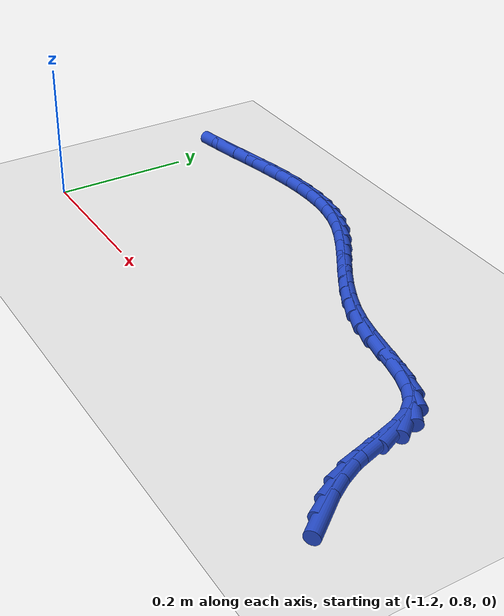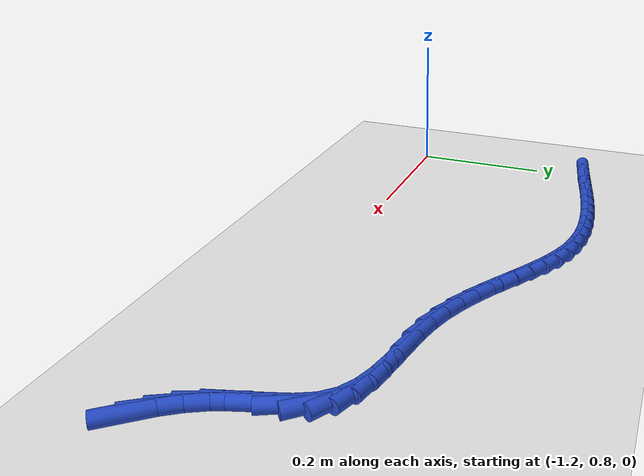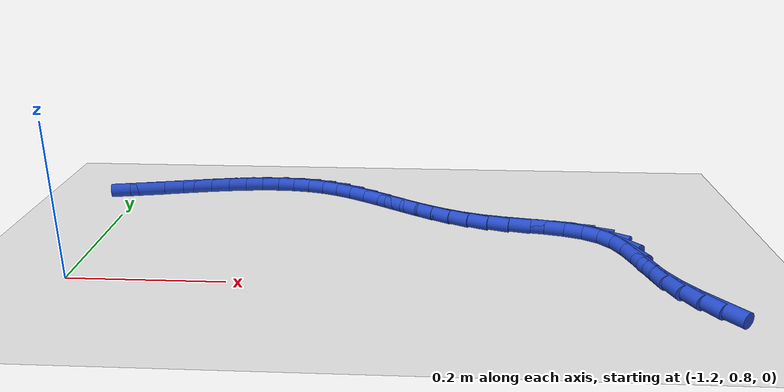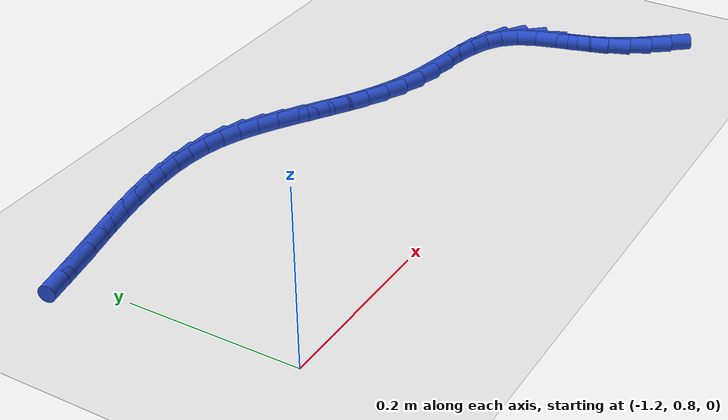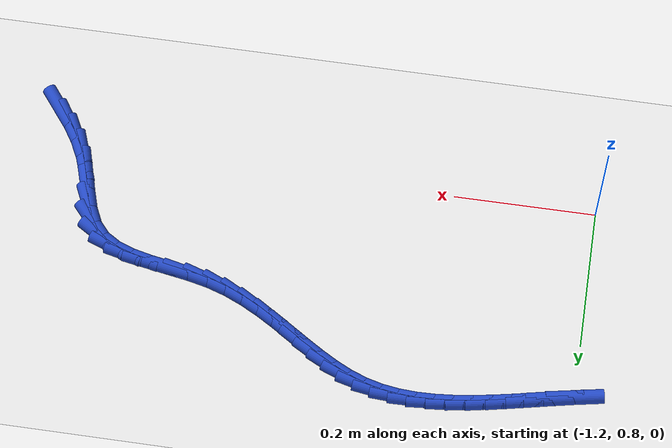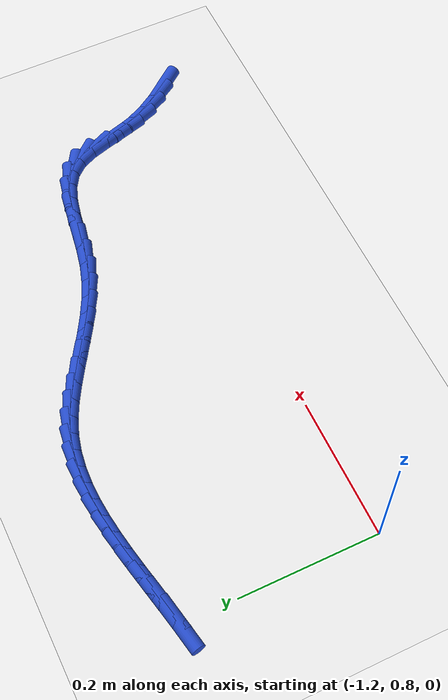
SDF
<sdf version="1.6">
 <world name="default">
  <model name="ground_plane">
   <static>1</static>
   <link name="link">
    <collision name="collision">
     <geometry><plane><normal>0 0 1</normal><size>100 100</size></plane></geometry>
     <surface><friction><ode><mu>100</mu><mu2>50</mu2></ode></friction></surface>
    </collision>
    <visual name="visual">
     <cast_shadows>0</cast_shadows>
     <geometry><plane><normal>0 0 1</normal><size>100 100</size></plane></geometry>
     <material>
      <script><uri>file://media/materials/scripts/gazebo.material</uri><name>Gazebo/WhiteGlow</name></script>
     </material>
    </visual>
   </link>
  </model>
  <model name="line">
   <link name="link_34">
    <pose>-0.4296642426156293 0.7523661136383257 0.01 0 1.57 -0.9057463648109343</pose>
    <collision name="collision">
     <geometry><cylinder><radius>0.01</radius><length>0.08</length></cylinder></geometry>
    </collision>
    <visual name="visual">
     <material>
      <script><name>Gazebo/Blue</name><uri>file://media/materials/scripts/gazebo.material</uri></script>
     </material>
     <geometry><cylinder><radius>0.01</radius><length>0.08</length></cylinder></geometry>
    </visual>
   </link>
   <link name="link_35">
    <pose>-0.4457051217196115 0.7728204552599179 0.01 0 1.57 -1.0030791591129404</pose>
    <collision name="collision">
     <geometry><cylinder><radius>0.01</radius><length>0.08</length></cylinder></geometry>
    </collision>
    <visual name="visual">
     <material>
      <script><name>Gazebo/Blue</name><uri>file://media/materials/scripts/gazebo.material</uri></script>
     </material>
     <geometry><cylinder><radius>0.01</radius><length>0.08</length></cylinder></geometry>
    </visual>
   </link>
   <link name="link_36">
    <pose>-0.4597346027352581 0.7948187698947893 0.01 0 1.57 -1.1121397618428095</pose>
    <collision name="collision">
     <geometry><cylinder><radius>0.01</radius><length>0.08</length></cylinder></geometry>
    </collision>
    <visual name="visual">
     <material>
      <script><name>Gazebo/Blue</name><uri>file://media/materials/scripts/gazebo.material</uri></script>
     </material>
     <geometry><cylinder><radius>0.01</radius><length>0.08</length></cylinder></geometry>
    </visual>
   </link>
   <link name="link_37">
    <pose>-0.47147140409225285 0.8185882227301708 0.01 0 1.57 -1.2277286352811019</pose>
    <collision name="collision">
     <geometry><cylinder><radius>0.01</radius><length>0.08</length></cylinder></geometry>
    </collision>
    <visual name="visual">
     <material>
      <script><name>Gazebo/Blue</name><uri>file://media/materials/scripts/gazebo.material</uri></script>
     </material>
     <geometry><cylinder><radius>0.01</radius><length>0.08</length></cylinder></geometry>
    </visual>
   </link>
   <link name="link_38">
    <pose>-0.48066493686973966 0.8443265592550228 0.01 0 1.57 -1.2996597589890848</pose>
    <collision name="collision">
     <geometry><cylinder><radius>0.01</radius><length>0.08</length></cylinder></geometry>
    </collision>
    <visual name="visual">
     <material>
      <script><name>Gazebo/Blue</name><uri>file://media/materials/scripts/gazebo.material</uri></script>
     </material>
     <geometry><cylinder><radius>0.01</radius><length>0.08</length></cylinder></geometry>
    </visual>
   </link>
   <link name="link_39">
    <pose>-0.48813642993797896 0.8712041598865475 0.01 0 1.57 -1.27503638557698</pose>
    <collision name="collision">
     <geometry><cylinder><radius>0.01</radius><length>0.08</length></cylinder></geometry>
    </collision>
    <visual name="visual">
     <material>
      <script><name>Gazebo/Blue</name><uri>file://media/materials/scripts/gazebo.material</uri></script>
     </material>
     <geometry><cylinder><radius>0.01</radius><length>0.08</length></cylinder></geometry>
    </visual>
   </link>
   <link name="link_40">
    <pose>-0.49603303935109755 0.8971204695455494 0.01 0 1.57 -1.1369674884240284</pose>
    <collision name="collision">
     <geometry><cylinder><radius>0.01</radius><length>0.08</length></cylinder></geometry>
    </collision>
    <visual name="visual">
     <material>
      <script><name>Gazebo/Blue</name><uri>file://media/materials/scripts/gazebo.material</uri></script>
     </material>
     <geometry><cylinder><radius>0.01</radius><length>0.08</length></cylinder></geometry>
    </visual>
   </link>
   <link name="link_41">
    <pose>-0.5065841579201086 0.9198961070945805 0.01 0 1.57 -0.8568703562322579</pose>
    <collision name="collision">
     <geometry><cylinder><radius>0.01</radius><length>0.08</length></cylinder></geometry>
    </collision>
    <visual name="visual">
     <material>
      <script><name>Gazebo/Blue</name><uri>file://media/materials/scripts/gazebo.material</uri></script>
     </material>
     <geometry><cylinder><radius>0.01</radius><length>0.08</length></cylinder></geometry>
    </visual>
   </link>
   <link name="link_42">
    <pose>-0.521856120005676 0.937523467976326 0.01 0 1.57 -0.5541727263473782</pose>
    <collision name="collision">
     <geometry><cylinder><radius>0.01</radius><length>0.08</length></cylinder></geometry>
    </collision>
    <visual name="visual">
     <material>
      <script><name>Gazebo/Blue</name><uri>file://media/materials/scripts/gazebo.material</uri></script>
     </material>
     <geometry><cylinder><radius>0.01</radius><length>0.08</length></cylinder></geometry>
    </visual>
   </link>
   <link name="link_43">
    <pose>-0.5420136787500056 0.9499981993377099 0.01 0 1.57 -0.3448551654596596</pose>
    <collision name="collision">
     <geometry><cylinder><radius>0.01</radius><length>0.08</length></cylinder></geometry>
    </collision>
    <visual name="visual">
     <material>
      <script><name>Gazebo/Blue</name><uri>file://media/materials/scripts/gazebo.material</uri></script>
     </material>
     <geometry><cylinder><radius>0.01</radius><length>0.08</length></cylinder></geometry>
    </visual>
   </link>
   <link name="link_44">
    <pose>-0.5659918928999403 0.9586113899135802 0.01 0 1.57 -0.2232366668856001</pose>
    <collision name="collision">
     <geometry><cylinder><radius>0.01</radius><length>0.08</length></cylinder></geometry>
    </collision>
    <visual name="visual">
     <material>
      <script><name>Gazebo/Blue</name><uri>file://media/materials/scripts/gazebo.material</uri></script>
     </material>
     <geometry><cylinder><radius>0.01</radius><length>0.08</length></cylinder></geometry>
    </visual>
   </link>
   <link name="link_45">
    <pose>-0.5927051970663787 0.9646758552706846 0.01 0 1.57 -0.16862572748127758</pose>
    <collision name="collision">
     <geometry><cylinder><radius>0.01</radius><length>0.08</length></cylinder></geometry>
    </collision>
    <visual name="visual">
     <material>
      <script><name>Gazebo/Blue</name><uri>file://media/materials/scripts/gazebo.material</uri></script>
     </material>
     <geometry><cylinder><radius>0.01</radius><length>0.08</length></cylinder></geometry>
    </visual>
   </link>
   <link name="link_46">
    <pose>-0.6210680258602197 0.9695044109757711 0.01 0 1.57 -0.16798383813372617</pose>
    <collision name="collision">
     <geometry><cylinder><radius>0.01</radius><length>0.08</length></cylinder></geometry>
    </collision>
    <visual name="visual">
     <material>
      <script><name>Gazebo/Blue</name><uri>file://media/materials/scripts/gazebo.material</uri></script>
     </material>
     <geometry><cylinder><radius>0.01</radius><length>0.08</length></cylinder></geometry>
    </visual>
   </link>
   <link name="link_47">
    <pose>-0.649994813892362 0.9744098725955884 0.01 0 1.57 -0.21809588610812755</pose>
    <collision name="collision">
     <geometry><cylinder><radius>0.01</radius><length>0.08</length></cylinder></geometry>
    </collision>
    <visual name="visual">
     <material>
      <script><name>Gazebo/Blue</name><uri>file://media/materials/scripts/gazebo.material</uri></script>
     </material>
     <geometry><cylinder><radius>0.01</radius><length>0.08</length></cylinder></geometry>
    </visual>
   </link>
   <link name="link_48">
    <pose>-0.6783999957737047 0.9807050556968839 0.01 0 1.57 -0.31346826993457216</pose>
    <collision name="collision">
     <geometry><cylinder><radius>0.01</radius><length>0.08</length></cylinder></geometry>
    </collision>
    <visual name="visual">
     <material>
      <script><name>Gazebo/Blue</name><uri>file://media/materials/scripts/gazebo.material</uri></script>
     </material>
     <geometry><cylinder><radius>0.01</radius><length>0.08</length></cylinder></geometry>
    </visual>
   </link>
   <link name="link_49">
    <pose>-0.7053775544619353 0.9894499911024626 0.01 0 1.57 -0.4071397368359691</pose>
    <collision name="collision">
     <geometry><cylinder><radius>0.01</radius><length>0.08</length></cylinder></geometry>
    </collision>
    <visual name="visual">
     <material>
      <script><name>Gazebo/Blue</name><uri>file://media/materials/scripts/gazebo.material</uri></script>
     </material>
     <geometry><cylinder><radius>0.01</radius><length>0.08</length></cylinder></geometry>
    </visual>
   </link>
   <link name="link_50">
    <pose>-0.7309063504535626 1.0004588973173276 0.01 0 1.57 -0.4811946413412693</pose>
    <collision name="collision">
     <geometry><cylinder><radius>0.01</radius><length>0.08</length></cylinder></geometry>
    </collision>
    <visual name="visual">
     <material>
      <script><name>Gazebo/Blue</name><uri>file://media/materials/scripts/gazebo.material</uri></script>
     </material>
     <geometry><cylinder><radius>0.01</radius><length>0.08</length></cylinder></geometry>
    </visual>
   </link>
   <link name="link_51">
    <pose>-0.7552373757681212 1.0131628609569527 0.01 0 1.57 -0.5340883040986776</pose>
    <collision name="collision">
     <geometry><cylinder><radius>0.01</radius><length>0.08</length></cylinder></geometry>
    </collision>
    <visual name="visual">
     <material>
      <script><name>Gazebo/Blue</name><uri>file://media/materials/scripts/gazebo.material</uri></script>
     </material>
     <geometry><cylinder><radius>0.01</radius><length>0.08</length></cylinder></geometry>
    </visual>
   </link>
   <link name="link_52">
    <pose>-0.7786216968149536 1.0269928639039727 0.01 0 1.57 -0.5651204793994682</pose>
    <collision name="collision">
     <geometry><cylinder><radius>0.01</radius><length>0.08</length></cylinder></geometry>
    </collision>
    <visual name="visual">
     <material>
      <script><name>Gazebo/Blue</name><uri>file://media/materials/scripts/gazebo.material</uri></script>
     </material>
     <geometry><cylinder><radius>0.01</radius><length>0.08</length></cylinder></geometry>
    </visual>
   </link>
   <link name="link_53">
    <pose>-0.8013103800034015 1.041379888041021 0.01 0 1.57 -0.5737272041077568</pose>
    <collision name="collision">
     <geometry><cylinder><radius>0.01</radius><length>0.08</length></cylinder></geometry>
    </collision>
    <visual name="visual">
     <material>
      <script><name>Gazebo/Blue</name><uri>file://media/materials/scripts/gazebo.material</uri></script>
     </material>
     <geometry><cylinder><radius>0.01</radius><length>0.08</length></cylinder></geometry>
    </visual>
   </link>
   <link name="link_54">
    <pose>-0.8235544917428067 1.0557549152507315 0.01 0 1.57 -0.5590030396459621</pose>
    <collision name="collision">
     <geometry><cylinder><radius>0.01</radius><length>0.08</length></cylinder></geometry>
    </collision>
    <visual name="visual">
     <material>
      <script><name>Gazebo/Blue</name><uri>file://media/materials/scripts/gazebo.material</uri></script>
     </material>
     <geometry><cylinder><radius>0.01</radius><length>0.08</length></cylinder></geometry>
    </visual>
   </link>
   <link name="link_55">
    <pose>-0.845605098442512 1.069548927415739 0.01 0 1.57 -0.5195122546426327</pose>
    <collision name="collision">
     <geometry><cylinder><radius>0.01</radius><length>0.08</length></cylinder></geometry>
    </collision>
    <visual name="visual">
     <material>
      <script><name>Gazebo/Blue</name><uri>file://media/materials/scripts/gazebo.material</uri></script>
     </material>
     <geometry><cylinder><radius>0.01</radius><length>0.08</length></cylinder></geometry>
    </visual>
   </link>
   <link name="link_56">
    <pose>-0.8677132665118586 1.0821929064186773 0.01 0 1.57 -0.4534801786071243</pose>
    <collision name="collision">
     <geometry><cylinder><radius>0.01</radius><length>0.08</length></cylinder></geometry>
    </collision>
    <visual name="visual">
     <material>
      <script><name>Gazebo/Blue</name><uri>file://media/materials/scripts/gazebo.material</uri></script>
     </material>
     <geometry><cylinder><radius>0.01</radius><length>0.08</length></cylinder></geometry>
    </visual>
   </link>
   <link name="link_57">
    <pose>-0.8901300623601892 1.09311783414218 0.01 0 1.57 -0.35956090834249355</pose>
    <collision name="collision">
     <geometry><cylinder><radius>0.01</radius><length>0.08</length></cylinder></geometry>
    </collision>
    <visual name="visual">
     <material>
      <script><name>Gazebo/Blue</name><uri>file://media/materials/scripts/gazebo.material</uri></script>
     </material>
     <geometry><cylinder><radius>0.01</radius><length>0.08</length></cylinder></geometry>
    </visual>
   </link>
   <link name="link_58">
    <pose>-0.9131065385099231 1.1017547290400438 0.01 0 1.57 -0.24590019628507445</pose>
    <collision name="collision">
     <geometry><cylinder><radius>0.01</radius><length>0.08</length></cylinder></geometry>
    </collision>
    <visual name="visual">
     <material>
      <script><name>Gazebo/Blue</name><uri>file://media/materials/scripts/gazebo.material</uri></script>
     </material>
     <geometry><cylinder><radius>0.01</radius><length>0.08</length></cylinder></geometry>
    </visual>
   </link>
   <link name="link_59">
    <pose>-0.9368278021111154 1.107708276475724 0.01 0 1.57 -0.14027447071063578</pose>
    <collision name="collision">
     <geometry><cylinder><radius>0.01</radius><length>0.08</length></cylinder></geometry>
    </collision>
    <visual name="visual">
     <material>
      <script><name>Gazebo/Blue</name><uri>file://media/materials/scripts/gazebo.material</uri></script>
     </material>
     <geometry><cylinder><radius>0.01</radius><length>0.08</length></cylinder></geometry>
    </visual>
   </link>
   <link name="link_60">
    <pose>-0.9612605930659535 1.1111582312034196 0.01 0 1.57 -0.04962777685539173</pose>
    <collision name="collision">
     <geometry><cylinder><radius>0.01</radius><length>0.08</length></cylinder></geometry>
    </collision>
    <visual name="visual">
     <material>
      <script><name>Gazebo/Blue</name><uri>file://media/materials/scripts/gazebo.material</uri></script>
     </material>
     <geometry><cylinder><radius>0.01</radius><length>0.08</length></cylinder></geometry>
    </visual>
   </link>
   <link name="link_61">
    <pose>-0.9863265130445336 1.112403219355165 0.01 0 1.57 0.025807520179779886</pose>
    <collision name="collision">
     <geometry><cylinder><radius>0.01</radius><length>0.08</length></cylinder></geometry>
    </collision>
    <visual name="visual">
     <material>
      <script><name>Gazebo/Blue</name><uri>file://media/materials/scripts/gazebo.material</uri></script>
     </material>
     <geometry><cylinder><radius>0.01</radius><length>0.08</length></cylinder></geometry>
    </visual>
   </link>
   <link name="link_62">
    <pose>-1.0119471637169515 1.1117418670629946 0.01 0 1.57 0.08672935312643844</pose>
    <collision name="collision">
     <geometry><cylinder><radius>0.01</radius><length>0.08</length></cylinder></geometry>
    </collision>
    <visual name="visual">
     <material>
      <script><name>Gazebo/Blue</name><uri>file://media/materials/scripts/gazebo.material</uri></script>
     </material>
     <geometry><cylinder><radius>0.01</radius><length>0.08</length></cylinder></geometry>
    </visual>
   </link>
   <link name="link_63">
    <pose>-1.0380441467533035 1.1094728004589425 0.01 0 1.57 0.13423843441653208</pose>
    <collision name="collision">
     <geometry><cylinder><radius>0.01</radius><length>0.08</length></cylinder></geometry>
    </collision>
    <visual name="visual">
     <material>
      <script><name>Gazebo/Blue</name><uri>file://media/materials/scripts/gazebo.material</uri></script>
     </material>
     <geometry><cylinder><radius>0.01</radius><length>0.08</length></cylinder></geometry>
    </visual>
   </link>
   <link name="link_64">
    <pose>-1.064539063823685 1.1058946456750434 0.01 0 1.57 0.16948312236743976</pose>
    <collision name="collision">
     <geometry><cylinder><radius>0.01</radius><length>0.08</length></cylinder></geometry>
    </collision>
    <visual name="visual">
     <material>
      <script><name>Gazebo/Blue</name><uri>file://media/materials/scripts/gazebo.material</uri></script>
     </material>
     <geometry><cylinder><radius>0.01</radius><length>0.08</length></cylinder></geometry>
    </visual>
   </link>
   <link name="link_65">
    <pose>-1.0913535165981916 1.1013060288433316 0.01 0 1.57 0.19345951035670922</pose>
    <collision name="collision">
     <geometry><cylinder><radius>0.01</radius><length>0.08</length></cylinder></geometry>
    </collision>
    <visual name="visual">
     <material>
      <script><name>Gazebo/Blue</name><uri>file://media/materials/scripts/gazebo.material</uri></script>
     </material>
     <geometry><cylinder><radius>0.01</radius><length>0.08</length></cylinder></geometry>
    </visual>
   </link>
   <link name="link_66">
    <pose>-1.1184091067469206 1.0960055760958423 0.01 0 1.57 0.20691525059108806</pose>
    <collision name="collision">
     <geometry><cylinder><radius>0.01</radius><length>0.08</length></cylinder></geometry>
    </collision>
    <visual name="visual">
     <material>
      <script><name>Gazebo/Blue</name><uri>file://media/materials/scripts/gazebo.material</uri></script>
     </material>
     <geometry><cylinder><radius>0.01</radius><length>0.08</length></cylinder></geometry>
    </visual>
   </link>
   <link name="link_67">
    <pose>-1.1456274359399665 1.090291913564608 0.01 0 1.57 0.21031138225236334</pose>
    <collision name="collision">
     <geometry><cylinder><radius>0.01</radius><length>0.08</length></cylinder></geometry>
    </collision>
    <visual name="visual">
     <material>
      <script><name>Gazebo/Blue</name><uri>file://media/materials/scripts/gazebo.material</uri></script>
     </material>
     <geometry><cylinder><radius>0.01</radius><length>0.08</length></cylinder></geometry>
    </visual>
   </link>
   <link name="link_68">
    <pose>-1.172930105847426 1.084463667381665 0.01 0 1.57 0.20381240524735147</pose>
    <collision name="collision">
     <geometry><cylinder><radius>0.01</radius><length>0.08</length></cylinder></geometry>
    </collision>
    <visual name="visual">
     <material>
      <script><name>Gazebo/Blue</name><uri>file://media/materials/scripts/gazebo.material</uri></script>
     </material>
     <geometry><cylinder><radius>0.01</radius><length>0.08</length></cylinder></geometry>
    </visual>
   </link>
   <link name="link_69">
    <pose>-1.2002387181393948 1.078819463679047 0.01 0 1.57 0.1872893701793756</pose>
    <collision name="collision">
     <geometry><cylinder><radius>0.01</radius><length>0.08</length></cylinder></geometry>
    </collision>
    <visual name="visual">
     <material>
      <script><name>Gazebo/Blue</name><uri>file://media/materials/scripts/gazebo.material</uri></script>
     </material>
     <geometry><cylinder><radius>0.01</radius><length>0.08</length></cylinder></geometry>
    </visual>
   </link>
  </model>
 </world>
</sdf>
